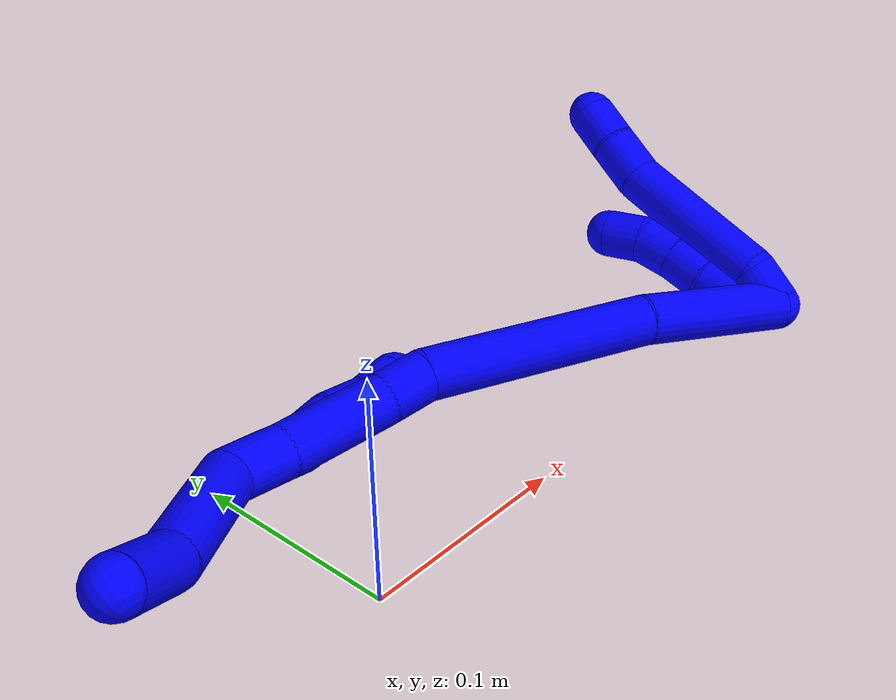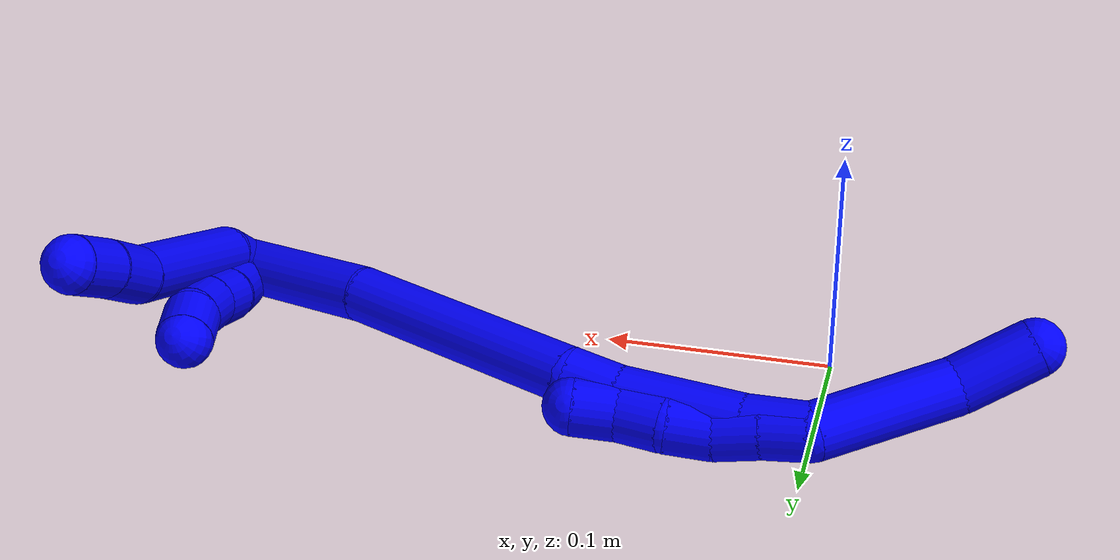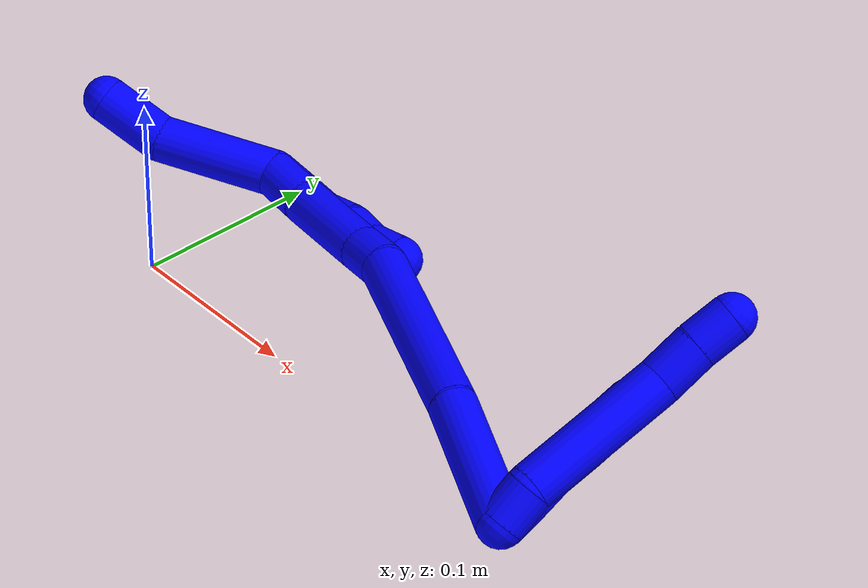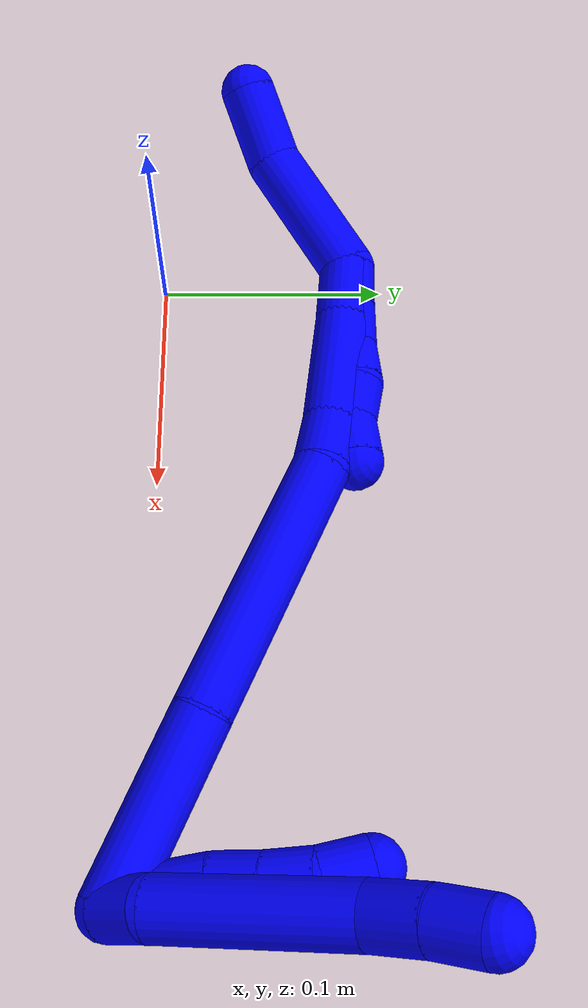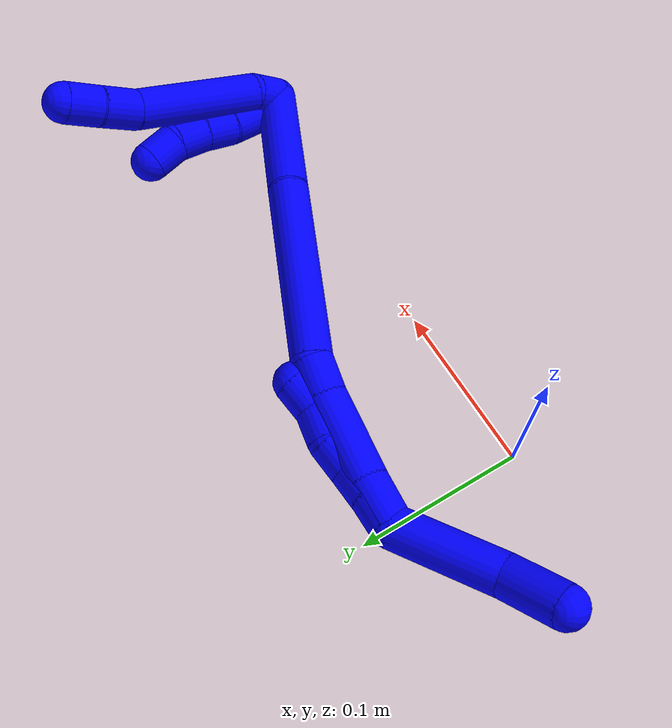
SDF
<sdf version="1.7">
 <world name="default">
  <model name="1">
   <static>0</static>
   <link name="1">
    <collision name="collision-cylinder-e_1_2_8">
     <pose>-2.2e-05 -0.000712 0.010663 0.066662 -0.002044 -6.8e-05</pose>
     <geometry><cylinder><radius>0.0125</radius><length>0.021373</length></cylinder></geometry>
     <surface>
      <friction><ode><mu>1.16</mu><mu2>1.16</mu2><slip1>0</slip1><slip2>0</slip2></ode></friction>
      <contact><ode><kp>1e+06</kp><kd>1</kd><max_vel>0</max_vel><min_depth>0.001</min_depth></ode></contact>
     </surface>
    </collision>
    <visual name="visual-cylinder-e_1_2_8">
     <pose>-2.2e-05 -0.000712 0.010663 0.066662 -0.002044 -6.8e-05</pose>
     <geometry><cylinder><radius>0.0125</radius><length>0.021373</length></cylinder></geometry>
     <material><ambient>0 0 1 1</ambient></material>
    </visual>
    <collision name="collision-cylinder-e_2_8_9">
     <pose>0.005551 0.008585 0.060712 -0.248848 0.13682 -0.017138</pose>
     <geometry><cylinder><radius>0.0125</radius><length>0.082044</length></cylinder></geometry>
     <surface>
      <friction><ode><mu>1.16</mu><mu2>1.16</mu2><slip1>0</slip1><slip2>0</slip2></ode></friction>
      <contact><ode><kp>1e+06</kp><kd>1</kd><max_vel>0</max_vel><min_depth>0.001</min_depth></ode></contact>
     </surface>
    </collision>
    <visual name="visual-cylinder-e_2_8_9">
     <pose>0.005551 0.008585 0.060712 -0.248848 0.13682 -0.017138</pose>
     <geometry><cylinder><radius>0.0125</radius><length>0.082044</length></cylinder></geometry>
     <material><ambient>0 0 1 1</ambient></material>
    </visual>
    <collision name="collision-cylinder-e_3_9_10">
     <pose>0.012414 0.01873 0.112392 -0.011045 0.102698 -0.000568</pose>
     <geometry><cylinder><radius>0.0125</radius><length>0.024717</length></cylinder></geometry>
     <surface>
      <friction><ode><mu>1.16</mu><mu2>1.16</mu2><slip1>0</slip1><slip2>0</slip2></ode></friction>
      <contact><ode><kp>1e+06</kp><kd>1</kd><max_vel>0</max_vel><min_depth>0.001</min_depth></ode></contact>
     </surface>
    </collision>
    <visual name="visual-cylinder-e_3_9_10">
     <pose>0.012414 0.01873 0.112392 -0.011045 0.102698 -0.000568</pose>
     <geometry><cylinder><radius>0.0125</radius><length>0.024717</length></cylinder></geometry>
     <material><ambient>0 0 1 1</ambient></material>
    </visual>
    <collision name="collision-cylinder-e_4_10_6">
     <pose>0.015833 0.019159 0.135399 -0.027346 0.198157 -0.002718</pose>
     <geometry><cylinder><radius>0.0125</radius><length>0.021866</length></cylinder></geometry>
     <surface>
      <friction><ode><mu>1.16</mu><mu2>1.16</mu2><slip1>0</slip1><slip2>0</slip2></ode></friction>
      <contact><ode><kp>1e+06</kp><kd>1</kd><max_vel>0</max_vel><min_depth>0.001</min_depth></ode></contact>
     </surface>
    </collision>
    <visual name="visual-cylinder-e_4_10_6">
     <pose>0.015833 0.019159 0.135399 -0.027346 0.198157 -0.002718</pose>
     <geometry><cylinder><radius>0.0125</radius><length>0.021866</length></cylinder></geometry>
     <material><ambient>0 0 1 1</ambient></material>
    </visual>
    <collision name="collision-cylinder-e_1_2_11">
     <pose>-0.000263 0.006347 0.007723 -0.687864 -0.026351 0.009439</pose>
     <geometry><cylinder><radius>0.0125</radius><length>0.02</length></cylinder></geometry>
     <surface>
      <friction><ode><mu>1.16</mu><mu2>1.16</mu2><slip1>0</slip1><slip2>0</slip2></ode></friction>
      <contact><ode><kp>1e+06</kp><kd>1</kd><max_vel>0</max_vel><min_depth>0.001</min_depth></ode></contact>
     </surface>
    </collision>
    <visual name="visual-cylinder-e_1_2_11">
     <pose>-0.000263 0.006347 0.007723 -0.687864 -0.026351 0.009439</pose>
     <geometry><cylinder><radius>0.0125</radius><length>0.02</length></cylinder></geometry>
     <material><ambient>0 0 1 1</ambient></material>
    </visual>
    <collision name="collision-cylinder-e_2_11_12">
     <pose>-0.000656 0.016773 0.024576 -0.420276 -0.012864 0.002744</pose>
     <geometry><cylinder><radius>0.0125</radius><length>0.02</length></cylinder></geometry>
     <surface>
      <friction><ode><mu>1.16</mu><mu2>1.16</mu2><slip1>0</slip1><slip2>0</slip2></ode></friction>
      <contact><ode><kp>1e+06</kp><kd>1</kd><max_vel>0</max_vel><min_depth>0.001</min_depth></ode></contact>
     </surface>
    </collision>
    <visual name="visual-cylinder-e_2_11_12">
     <pose>-0.000656 0.016773 0.024576 -0.420276 -0.012864 0.002744</pose>
     <geometry><cylinder><radius>0.0125</radius><length>0.02</length></cylinder></geometry>
     <material><ambient>0 0 1 1</ambient></material>
    </visual>
    <collision name="collision-cylinder-e_3_12_13">
     <pose>0.000445 0.0239 0.043149 -0.312112 0.123245 -0.019415</pose>
     <geometry><cylinder><radius>0.0125</radius><length>0.02</length></cylinder></geometry>
     <surface>
      <friction><ode><mu>1.16</mu><mu2>1.16</mu2><slip1>0</slip1><slip2>0</slip2></ode></friction>
      <contact><ode><kp>1e+06</kp><kd>1</kd><max_vel>0</max_vel><min_depth>0.001</min_depth></ode></contact>
     </surface>
    </collision>
    <visual name="visual-cylinder-e_3_12_13">
     <pose>0.000445 0.0239 0.043149 -0.312112 0.123245 -0.019415</pose>
     <geometry><cylinder><radius>0.0125</radius><length>0.02</length></cylinder></geometry>
     <material><ambient>0 0 1 1</ambient></material>
    </visual>
    <collision name="collision-cylinder-e_4_13_14">
     <pose>0.002455 0.030976 0.061714 -0.415908 0.078169 -0.016502</pose>
     <geometry><cylinder><radius>0.0125</radius><length>0.02</length></cylinder></geometry>
     <surface>
      <friction><ode><mu>1.16</mu><mu2>1.16</mu2><slip1>0</slip1><slip2>0</slip2></ode></friction>
      <contact><ode><kp>1e+06</kp><kd>1</kd><max_vel>0</max_vel><min_depth>0.001</min_depth></ode></contact>
     </surface>
    </collision>
    <visual name="visual-cylinder-e_4_13_14">
     <pose>0.002455 0.030976 0.061714 -0.415908 0.078169 -0.016502</pose>
     <geometry><cylinder><radius>0.0125</radius><length>0.02</length></cylinder></geometry>
     <material><ambient>0 0 1 1</ambient></material>
    </visual>
    <collision name="collision-cylinder-e_5_14_5">
     <pose>0.003254 0.041621 0.07833 -0.723205 0.001795 -0.000679</pose>
     <geometry><cylinder><radius>0.0125</radius><length>0.02</length></cylinder></geometry>
     <surface>
      <friction><ode><mu>1.16</mu><mu2>1.16</mu2><slip1>0</slip1><slip2>0</slip2></ode></friction>
      <contact><ode><kp>1e+06</kp><kd>1</kd><max_vel>0</max_vel><min_depth>0.001</min_depth></ode></contact>
     </surface>
    </collision>
    <visual name="visual-cylinder-e_5_14_5">
     <pose>0.003254 0.041621 0.07833 -0.723205 0.001795 -0.000679</pose>
     <geometry><cylinder><radius>0.0125</radius><length>0.02</length></cylinder></geometry>
     <material><ambient>0 0 1 1</ambient></material>
    </visual>
    <collision name="collision-cylinder-e_1_2_15">
     <pose>-0.030743 0.020169 0.014345 -0.952589 -0.892978 0.484273</pose>
     <geometry><cylinder><radius>0.0125</radius><length>0.078936</length></cylinder></geometry>
     <surface>
      <friction><ode><mu>1.16</mu><mu2>1.16</mu2><slip1>0</slip1><slip2>0</slip2></ode></friction>
      <contact><ode><kp>1e+06</kp><kd>1</kd><max_vel>0</max_vel><min_depth>0.001</min_depth></ode></contact>
     </surface>
    </collision>
    <visual name="visual-cylinder-e_1_2_15">
     <pose>-0.030743 0.020169 0.014345 -0.952589 -0.892978 0.484273</pose>
     <geometry><cylinder><radius>0.0125</radius><length>0.078936</length></cylinder></geometry>
     <material><ambient>0 0 1 1</ambient></material>
    </visual>
    <collision name="collision-cylinder-e_2_15_16">
     <pose>-0.104756 0.075348 0.044883 -1.13754 -0.84272 0.558065</pose>
     <geometry><cylinder><radius>0.0125</radius><length>0.115933</length></cylinder></geometry>
     <surface>
      <friction><ode><mu>1.16</mu><mu2>1.16</mu2><slip1>0</slip1><slip2>0</slip2></ode></friction>
      <contact><ode><kp>1e+06</kp><kd>1</kd><max_vel>0</max_vel><min_depth>0.001</min_depth></ode></contact>
     </surface>
    </collision>
    <visual name="visual-cylinder-e_2_15_16">
     <pose>-0.104756 0.075348 0.044883 -1.13754 -0.84272 0.558065</pose>
     <geometry><cylinder><radius>0.0125</radius><length>0.115933</length></cylinder></geometry>
     <material><ambient>0 0 1 1</ambient></material>
    </visual>
    <collision name="collision-cylinder-e_3_16_17">
     <pose>-0.157113 0.117488 0.061199 -1.55379 -0.90536 0.892055</pose>
     <geometry><cylinder><radius>0.0125</radius><length>0.023104</length></cylinder></geometry>
     <surface>
      <friction><ode><mu>1.16</mu><mu2>1.16</mu2><slip1>0</slip1><slip2>0</slip2></ode></friction>
      <contact><ode><kp>1e+06</kp><kd>1</kd><max_vel>0</max_vel><min_depth>0.001</min_depth></ode></contact>
     </surface>
    </collision>
    <visual name="visual-cylinder-e_3_16_17">
     <pose>-0.157113 0.117488 0.061199 -1.55379 -0.90536 0.892055</pose>
     <geometry><cylinder><radius>0.0125</radius><length>0.023104</length></cylinder></geometry>
     <material><ambient>0 0 1 1</ambient></material>
    </visual>
    <collision name="collision-cylinder-e_4_17_18">
     <pose>-0.189425 0.138305 0.061759 -1.53872 -1.03806 1.01065</pose>
     <geometry><cylinder><radius>0.0125</radius><length>0.053922</length></cylinder></geometry>
     <surface>
      <friction><ode><mu>1.16</mu><mu2>1.16</mu2><slip1>0</slip1><slip2>0</slip2></ode></friction>
      <contact><ode><kp>1e+06</kp><kd>1</kd><max_vel>0</max_vel><min_depth>0.001</min_depth></ode></contact>
     </surface>
    </collision>
    <visual name="visual-cylinder-e_4_17_18">
     <pose>-0.189425 0.138305 0.061759 -1.53872 -1.03806 1.01065</pose>
     <geometry><cylinder><radius>0.0125</radius><length>0.053922</length></cylinder></geometry>
     <material><ambient>0 0 1 1</ambient></material>
    </visual>
    <collision name="collision-cylinder-e_5_18_1">
     <pose>-0.225377 0.157911 0.062865 -1.45856 -1.13305 1.03373</pose>
     <geometry><cylinder><radius>0.0125</radius><length>0.028105</length></cylinder></geometry>
     <surface>
      <friction><ode><mu>1.16</mu><mu2>1.16</mu2><slip1>0</slip1><slip2>0</slip2></ode></friction>
      <contact><ode><kp>1e+06</kp><kd>1</kd><max_vel>0</max_vel><min_depth>0.001</min_depth></ode></contact>
     </surface>
    </collision>
    <visual name="visual-cylinder-e_5_18_1">
     <pose>-0.225377 0.157911 0.062865 -1.45856 -1.13305 1.03373</pose>
     <geometry><cylinder><radius>0.0125</radius><length>0.028105</length></cylinder></geometry>
     <material><ambient>0 0 1 1</ambient></material>
    </visual>
    <collision name="collision-cylinder-e_1_1_19">
     <pose>-0.228746 0.160312 0.063352 1.622 1.21079 1.25915</pose>
     <geometry><cylinder><radius>0.0125</radius><length>0.02</length></cylinder></geometry>
     <surface>
      <friction><ode><mu>1.16</mu><mu2>1.16</mu2><slip1>0</slip1><slip2>0</slip2></ode></friction>
      <contact><ode><kp>1e+06</kp><kd>1</kd><max_vel>0</max_vel><min_depth>0.001</min_depth></ode></contact>
     </surface>
    </collision>
    <visual name="visual-cylinder-e_1_1_19">
     <pose>-0.228746 0.160312 0.063352 1.622 1.21079 1.25915</pose>
     <geometry><cylinder><radius>0.0125</radius><length>0.02</length></cylinder></geometry>
     <material><ambient>0 0 1 1</ambient></material>
    </visual>
    <collision name="collision-cylinder-e_2_19_20">
     <pose>-0.209752 0.154128 0.062928 1.66195 1.29978 1.3887</pose>
     <geometry><cylinder><radius>0.0125</radius><length>0.02</length></cylinder></geometry>
     <surface>
      <friction><ode><mu>1.16</mu><mu2>1.16</mu2><slip1>0</slip1><slip2>0</slip2></ode></friction>
      <contact><ode><kp>1e+06</kp><kd>1</kd><max_vel>0</max_vel><min_depth>0.001</min_depth></ode></contact>
     </surface>
    </collision>
    <visual name="visual-cylinder-e_2_19_20">
     <pose>-0.209752 0.154128 0.062928 1.66195 1.29978 1.3887</pose>
     <geometry><cylinder><radius>0.0125</radius><length>0.02</length></cylinder></geometry>
     <material><ambient>0 0 1 1</ambient></material>
    </visual>
    <collision name="collision-cylinder-e_3_20_21">
     <pose>-0.191299 0.1472 0.064703 1.12843 1.07969 0.724914</pose>
     <geometry><cylinder><radius>0.0125</radius><length>0.02</length></cylinder></geometry>
     <surface>
      <friction><ode><mu>1.16</mu><mu2>1.16</mu2><slip1>0</slip1><slip2>0</slip2></ode></friction>
      <contact><ode><kp>1e+06</kp><kd>1</kd><max_vel>0</max_vel><min_depth>0.001</min_depth></ode></contact>
     </surface>
    </collision>
    <visual name="visual-cylinder-e_3_20_21">
     <pose>-0.191299 0.1472 0.064703 1.12843 1.07969 0.724914</pose>
     <geometry><cylinder><radius>0.0125</radius><length>0.02</length></cylinder></geometry>
     <material><ambient>0 0 1 1</ambient></material>
    </visual>
    <collision name="collision-cylinder-e_4_21_22">
     <pose>-0.173984 0.137728 0.065903 1.72669 1.01527 1.15347</pose>
     <geometry><cylinder><radius>0.0125</radius><length>0.02</length></cylinder></geometry>
     <surface>
      <friction><ode><mu>1.16</mu><mu2>1.16</mu2><slip1>0</slip1><slip2>0</slip2></ode></friction>
      <contact><ode><kp>1e+06</kp><kd>1</kd><max_vel>0</max_vel><min_depth>0.001</min_depth></ode></contact>
     </surface>
    </collision>
    <visual name="visual-cylinder-e_4_21_22">
     <pose>-0.173984 0.137728 0.065903 1.72669 1.01527 1.15347</pose>
     <geometry><cylinder><radius>0.0125</radius><length>0.02</length></cylinder></geometry>
     <material><ambient>0 0 1 1</ambient></material>
    </visual>
    <collision name="collision-cylinder-e_5_22_4">
     <pose>-0.156538 0.128547 0.067117 1.09772 1.10839 0.72363</pose>
     <geometry><cylinder><radius>0.0125</radius><length>0.02</length></cylinder></geometry>
     <surface>
      <friction><ode><mu>1.16</mu><mu2>1.16</mu2><slip1>0</slip1><slip2>0</slip2></ode></friction>
      <contact><ode><kp>1e+06</kp><kd>1</kd><max_vel>0</max_vel><min_depth>0.001</min_depth></ode></contact>
     </surface>
    </collision>
    <visual name="visual-cylinder-e_5_22_4">
     <pose>-0.156538 0.128547 0.067117 1.09772 1.10839 0.72363</pose>
     <geometry><cylinder><radius>0.0125</radius><length>0.02</length></cylinder></geometry>
     <material><ambient>0 0 1 1</ambient></material>
    </visual>
    <collision name="collision-cylinder-e_1_1_23">
     <pose>-0.267674 0.16221 0.051104 3.01201 -1.16987 -2.94627</pose>
     <geometry><cylinder><radius>0.0125</radius><length>0.064232</length></cylinder></geometry>
     <surface>
      <friction><ode><mu>1.16</mu><mu2>1.16</mu2><slip1>0</slip1><slip2>0</slip2></ode></friction>
      <contact><ode><kp>1e+06</kp><kd>1</kd><max_vel>0</max_vel><min_depth>0.001</min_depth></ode></contact>
     </surface>
    </collision>
    <visual name="visual-cylinder-e_1_1_23">
     <pose>-0.267674 0.16221 0.051104 3.01201 -1.16987 -2.94627</pose>
     <geometry><cylinder><radius>0.0125</radius><length>0.064232</length></cylinder></geometry>
     <material><ambient>0 0 1 1</ambient></material>
    </visual>
    <collision name="collision-cylinder-e_2_23_3">
     <pose>-0.31487 0.157868 0.037365 2.01917 -1.40104 -1.8603</pose>
     <geometry><cylinder><radius>0.0125</radius><length>0.035768</length></cylinder></geometry>
     <surface>
      <friction><ode><mu>1.16</mu><mu2>1.16</mu2><slip1>0</slip1><slip2>0</slip2></ode></friction>
      <contact><ode><kp>1e+06</kp><kd>1</kd><max_vel>0</max_vel><min_depth>0.001</min_depth></ode></contact>
     </surface>
    </collision>
    <visual name="visual-cylinder-e_2_23_3">
     <pose>-0.31487 0.157868 0.037365 2.01917 -1.40104 -1.8603</pose>
     <geometry><cylinder><radius>0.0125</radius><length>0.035768</length></cylinder></geometry>
     <material><ambient>0 0 1 1</ambient></material>
    </visual>
    <collision name="collision-sphere-3">
     <pose>-0.332497 0.155146 0.036056 0 -0 0</pose>
     <geometry><sphere><radius>0.0125</radius></sphere></geometry>
     <surface>
      <friction><ode><mu>1.16</mu><mu2>1.16</mu2><slip1>0</slip1><slip2>0</slip2></ode></friction>
      <contact><ode><kp>1e+06</kp><kd>1</kd><max_vel>0</max_vel><min_depth>0.001</min_depth></ode></contact>
     </surface>
    </collision>
    <visual name="visual-sphere-3">
     <pose>-0.332497 0.155146 0.036056 0 -0 0</pose>
     <geometry><sphere><radius>0.0125</radius></sphere></geometry>
     <material><ambient>0 0 1 1</ambient></material>
    </visual>
    <collision name="collision-sphere-23">
     <pose>-0.297243 0.160591 0.038675 0 -0 0</pose>
     <geometry><sphere><radius>0.0125</radius></sphere></geometry>
     <surface>
      <friction><ode><mu>1.16</mu><mu2>1.16</mu2><slip1>0</slip1><slip2>0</slip2></ode></friction>
      <contact><ode><kp>1e+06</kp><kd>1</kd><max_vel>0</max_vel><min_depth>0.001</min_depth></ode></contact>
     </surface>
    </collision>
    <visual name="visual-sphere-23">
     <pose>-0.297243 0.160591 0.038675 0 -0 0</pose>
     <geometry><sphere><radius>0.0125</radius></sphere></geometry>
     <material><ambient>0 0 1 1</ambient></material>
    </visual>
    <collision name="collision-sphere-4">
     <pose>-0.147588 0.124576 0.06915 0 -0 0</pose>
     <geometry><sphere><radius>0.0125</radius></sphere></geometry>
     <surface>
      <friction><ode><mu>1.16</mu><mu2>1.16</mu2><slip1>0</slip1><slip2>0</slip2></ode></friction>
      <contact><ode><kp>1e+06</kp><kd>1</kd><max_vel>0</max_vel><min_depth>0.001</min_depth></ode></contact>
     </surface>
    </collision>
    <visual name="visual-sphere-4">
     <pose>-0.147588 0.124576 0.06915 0 -0 0</pose>
     <geometry><sphere><radius>0.0125</radius></sphere></geometry>
     <material><ambient>0 0 1 1</ambient></material>
    </visual>
    <collision name="collision-sphere-22">
     <pose>-0.165488 0.132518 0.065085 0 -0 0</pose>
     <geometry><sphere><radius>0.0125</radius></sphere></geometry>
     <surface>
      <friction><ode><mu>1.16</mu><mu2>1.16</mu2><slip1>0</slip1><slip2>0</slip2></ode></friction>
      <contact><ode><kp>1e+06</kp><kd>1</kd><max_vel>0</max_vel><min_depth>0.001</min_depth></ode></contact>
     </surface>
    </collision>
    <visual name="visual-sphere-22">
     <pose>-0.165488 0.132518 0.065085 0 -0 0</pose>
     <geometry><sphere><radius>0.0125</radius></sphere></geometry>
     <material><ambient>0 0 1 1</ambient></material>
    </visual>
    <collision name="collision-sphere-21">
     <pose>-0.182481 0.142938 0.066722 0 -0 0</pose>
     <geometry><sphere><radius>0.0125</radius></sphere></geometry>
     <surface>
      <friction><ode><mu>1.16</mu><mu2>1.16</mu2><slip1>0</slip1><slip2>0</slip2></ode></friction>
      <contact><ode><kp>1e+06</kp><kd>1</kd><max_vel>0</max_vel><min_depth>0.001</min_depth></ode></contact>
     </surface>
    </collision>
    <visual name="visual-sphere-21">
     <pose>-0.182481 0.142938 0.066722 0 -0 0</pose>
     <geometry><sphere><radius>0.0125</radius></sphere></geometry>
     <material><ambient>0 0 1 1</ambient></material>
    </visual>
    <collision name="collision-sphere-20">
     <pose>-0.200117 0.151462 0.062685 0 -0 0</pose>
     <geometry><sphere><radius>0.0125</radius></sphere></geometry>
     <surface>
      <friction><ode><mu>1.16</mu><mu2>1.16</mu2><slip1>0</slip1><slip2>0</slip2></ode></friction>
      <contact><ode><kp>1e+06</kp><kd>1</kd><max_vel>0</max_vel><min_depth>0.001</min_depth></ode></contact>
     </surface>
    </collision>
    <visual name="visual-sphere-20">
     <pose>-0.200117 0.151462 0.062685 0 -0 0</pose>
     <geometry><sphere><radius>0.0125</radius></sphere></geometry>
     <material><ambient>0 0 1 1</ambient></material>
    </visual>
    <collision name="collision-sphere-11">
     <pose>-0.000527 0.012693 0.015447 0 -0 0</pose>
     <geometry><sphere><radius>0.0125</radius></sphere></geometry>
     <surface>
      <friction><ode><mu>1.16</mu><mu2>1.16</mu2><slip1>0</slip1><slip2>0</slip2></ode></friction>
      <contact><ode><kp>1e+06</kp><kd>1</kd><max_vel>0</max_vel><min_depth>0.001</min_depth></ode></contact>
     </surface>
    </collision>
    <visual name="visual-sphere-11">
     <pose>-0.000527 0.012693 0.015447 0 -0 0</pose>
     <geometry><sphere><radius>0.0125</radius></sphere></geometry>
     <material><ambient>0 0 1 1</ambient></material>
    </visual>
    <collision name="collision-sphere-6">
     <pose>0.017985 0.019452 0.146115 0 -0 0</pose>
     <geometry><sphere><radius>0.0125</radius></sphere></geometry>
     <surface>
      <friction><ode><mu>1.16</mu><mu2>1.16</mu2><slip1>0</slip1><slip2>0</slip2></ode></friction>
      <contact><ode><kp>1e+06</kp><kd>1</kd><max_vel>0</max_vel><min_depth>0.001</min_depth></ode></contact>
     </surface>
    </collision>
    <visual name="visual-sphere-6">
     <pose>0.017985 0.019452 0.146115 0 -0 0</pose>
     <geometry><sphere><radius>0.0125</radius></sphere></geometry>
     <material><ambient>0 0 1 1</ambient></material>
    </visual>
    <collision name="collision-sphere-10">
     <pose>0.013681 0.018865 0.124684 0 -0 0</pose>
     <geometry><sphere><radius>0.0125</radius></sphere></geometry>
     <surface>
      <friction><ode><mu>1.16</mu><mu2>1.16</mu2><slip1>0</slip1><slip2>0</slip2></ode></friction>
      <contact><ode><kp>1e+06</kp><kd>1</kd><max_vel>0</max_vel><min_depth>0.001</min_depth></ode></contact>
     </surface>
    </collision>
    <visual name="visual-sphere-10">
     <pose>0.013681 0.018865 0.124684 0 -0 0</pose>
     <geometry><sphere><radius>0.0125</radius></sphere></geometry>
     <material><ambient>0 0 1 1</ambient></material>
    </visual>
    <collision name="collision-sphere-9">
     <pose>0.011147 0.018594 0.100099 0 -0 0</pose>
     <geometry><sphere><radius>0.0125</radius></sphere></geometry>
     <surface>
      <friction><ode><mu>1.16</mu><mu2>1.16</mu2><slip1>0</slip1><slip2>0</slip2></ode></friction>
      <contact><ode><kp>1e+06</kp><kd>1</kd><max_vel>0</max_vel><min_depth>0.001</min_depth></ode></contact>
     </surface>
    </collision>
    <visual name="visual-sphere-9">
     <pose>0.011147 0.018594 0.100099 0 -0 0</pose>
     <geometry><sphere><radius>0.0125</radius></sphere></geometry>
     <material><ambient>0 0 1 1</ambient></material>
    </visual>
    <collision name="collision-sphere-2">
     <geometry><sphere><radius>0.0125</radius></sphere></geometry>
     <surface>
      <friction><ode><mu>1.16</mu><mu2>1.16</mu2><slip1>0</slip1><slip2>0</slip2></ode></friction>
      <contact><ode><kp>1e+06</kp><kd>1</kd><max_vel>0</max_vel><min_depth>0.001</min_depth></ode></contact>
     </surface>
    </collision>
    <visual name="visual-sphere-2">
     <geometry><sphere><radius>0.0125</radius></sphere></geometry>
     <material><ambient>0 0 1 1</ambient></material>
    </visual>
    <collision name="collision-sphere-19">
     <pose>-0.219387 0.156794 0.063172 0 -0 0</pose>
     <geometry><sphere><radius>0.0125</radius></sphere></geometry>
     <surface>
      <friction><ode><mu>1.16</mu><mu2>1.16</mu2><slip1>0</slip1><slip2>0</slip2></ode></friction>
      <contact><ode><kp>1e+06</kp><kd>1</kd><max_vel>0</max_vel><min_depth>0.001</min_depth></ode></contact>
     </surface>
    </collision>
    <visual name="visual-sphere-19">
     <pose>-0.219387 0.156794 0.063172 0 -0 0</pose>
     <geometry><sphere><radius>0.0125</radius></sphere></geometry>
     <material><ambient>0 0 1 1</ambient></material>
    </visual>
    <collision name="collision-sphere-8">
     <pose>-4.4e-05 -0.001424 0.021325 0 -0 0</pose>
     <geometry><sphere><radius>0.0125</radius></sphere></geometry>
     <surface>
      <friction><ode><mu>1.16</mu><mu2>1.16</mu2><slip1>0</slip1><slip2>0</slip2></ode></friction>
      <contact><ode><kp>1e+06</kp><kd>1</kd><max_vel>0</max_vel><min_depth>0.001</min_depth></ode></contact>
     </surface>
    </collision>
    <visual name="visual-sphere-8">
     <pose>-4.4e-05 -0.001424 0.021325 0 -0 0</pose>
     <geometry><sphere><radius>0.0125</radius></sphere></geometry>
     <material><ambient>0 0 1 1</ambient></material>
    </visual>
    <collision name="collision-sphere-12">
     <pose>-0.000784 0.020853 0.033705 0 -0 0</pose>
     <geometry><sphere><radius>0.0125</radius></sphere></geometry>
     <surface>
      <friction><ode><mu>1.16</mu><mu2>1.16</mu2><slip1>0</slip1><slip2>0</slip2></ode></friction>
      <contact><ode><kp>1e+06</kp><kd>1</kd><max_vel>0</max_vel><min_depth>0.001</min_depth></ode></contact>
     </surface>
    </collision>
    <visual name="visual-sphere-12">
     <pose>-0.000784 0.020853 0.033705 0 -0 0</pose>
     <geometry><sphere><radius>0.0125</radius></sphere></geometry>
     <material><ambient>0 0 1 1</ambient></material>
    </visual>
    <collision name="collision-sphere-13">
     <pose>0.001674 0.026948 0.052594 0 -0 0</pose>
     <geometry><sphere><radius>0.0125</radius></sphere></geometry>
     <surface>
      <friction><ode><mu>1.16</mu><mu2>1.16</mu2><slip1>0</slip1><slip2>0</slip2></ode></friction>
      <contact><ode><kp>1e+06</kp><kd>1</kd><max_vel>0</max_vel><min_depth>0.001</min_depth></ode></contact>
     </surface>
    </collision>
    <visual name="visual-sphere-13">
     <pose>0.001674 0.026948 0.052594 0 -0 0</pose>
     <geometry><sphere><radius>0.0125</radius></sphere></geometry>
     <material><ambient>0 0 1 1</ambient></material>
    </visual>
    <collision name="collision-sphere-14">
     <pose>0.003236 0.035003 0.070833 0 -0 0</pose>
     <geometry><sphere><radius>0.0125</radius></sphere></geometry>
     <surface>
      <friction><ode><mu>1.16</mu><mu2>1.16</mu2><slip1>0</slip1><slip2>0</slip2></ode></friction>
      <contact><ode><kp>1e+06</kp><kd>1</kd><max_vel>0</max_vel><min_depth>0.001</min_depth></ode></contact>
     </surface>
    </collision>
    <visual name="visual-sphere-14">
     <pose>0.003236 0.035003 0.070833 0 -0 0</pose>
     <geometry><sphere><radius>0.0125</radius></sphere></geometry>
     <material><ambient>0 0 1 1</ambient></material>
    </visual>
    <collision name="collision-sphere-5">
     <pose>0.003272 0.048239 0.085827 0 -0 0</pose>
     <geometry><sphere><radius>0.0125</radius></sphere></geometry>
     <surface>
      <friction><ode><mu>1.16</mu><mu2>1.16</mu2><slip1>0</slip1><slip2>0</slip2></ode></friction>
      <contact><ode><kp>1e+06</kp><kd>1</kd><max_vel>0</max_vel><min_depth>0.001</min_depth></ode></contact>
     </surface>
    </collision>
    <visual name="visual-sphere-5">
     <pose>0.003272 0.048239 0.085827 0 -0 0</pose>
     <geometry><sphere><radius>0.0125</radius></sphere></geometry>
     <material><ambient>0 0 1 1</ambient></material>
    </visual>
    <collision name="collision-sphere-15">
     <pose>-0.061487 0.040339 0.028689 0 -0 0</pose>
     <geometry><sphere><radius>0.0125</radius></sphere></geometry>
     <surface>
      <friction><ode><mu>1.16</mu><mu2>1.16</mu2><slip1>0</slip1><slip2>0</slip2></ode></friction>
      <contact><ode><kp>1e+06</kp><kd>1</kd><max_vel>0</max_vel><min_depth>0.001</min_depth></ode></contact>
     </surface>
    </collision>
    <visual name="visual-sphere-15">
     <pose>-0.061487 0.040339 0.028689 0 -0 0</pose>
     <geometry><sphere><radius>0.0125</radius></sphere></geometry>
     <material><ambient>0 0 1 1</ambient></material>
    </visual>
    <collision name="collision-sphere-16">
     <pose>-0.148025 0.110356 0.061077 0 -0 0</pose>
     <geometry><sphere><radius>0.0125</radius></sphere></geometry>
     <surface>
      <friction><ode><mu>1.16</mu><mu2>1.16</mu2><slip1>0</slip1><slip2>0</slip2></ode></friction>
      <contact><ode><kp>1e+06</kp><kd>1</kd><max_vel>0</max_vel><min_depth>0.001</min_depth></ode></contact>
     </surface>
    </collision>
    <visual name="visual-sphere-16">
     <pose>-0.148025 0.110356 0.061077 0 -0 0</pose>
     <geometry><sphere><radius>0.0125</radius></sphere></geometry>
     <material><ambient>0 0 1 1</ambient></material>
    </visual>
    <collision name="collision-sphere-17">
     <pose>-0.1662 0.124619 0.06132 0 -0 0</pose>
     <geometry><sphere><radius>0.0125</radius></sphere></geometry>
     <surface>
      <friction><ode><mu>1.16</mu><mu2>1.16</mu2><slip1>0</slip1><slip2>0</slip2></ode></friction>
      <contact><ode><kp>1e+06</kp><kd>1</kd><max_vel>0</max_vel><min_depth>0.001</min_depth></ode></contact>
     </surface>
    </collision>
    <visual name="visual-sphere-17">
     <pose>-0.1662 0.124619 0.06132 0 -0 0</pose>
     <geometry><sphere><radius>0.0125</radius></sphere></geometry>
     <material><ambient>0 0 1 1</ambient></material>
    </visual>
    <collision name="collision-sphere-18">
     <pose>-0.21265 0.151991 0.062198 0 -0 0</pose>
     <geometry><sphere><radius>0.0125</radius></sphere></geometry>
     <surface>
      <friction><ode><mu>1.16</mu><mu2>1.16</mu2><slip1>0</slip1><slip2>0</slip2></ode></friction>
      <contact><ode><kp>1e+06</kp><kd>1</kd><max_vel>0</max_vel><min_depth>0.001</min_depth></ode></contact>
     </surface>
    </collision>
    <visual name="visual-sphere-18">
     <pose>-0.21265 0.151991 0.062198 0 -0 0</pose>
     <geometry><sphere><radius>0.0125</radius></sphere></geometry>
     <material><ambient>0 0 1 1</ambient></material>
    </visual>
    <collision name="collision-sphere-1">
     <pose>-0.238105 0.16383 0.063533 0 -0 0</pose>
     <geometry><sphere><radius>0.0125</radius></sphere></geometry>
     <surface>
      <friction><ode><mu>1.16</mu><mu2>1.16</mu2><slip1>0</slip1><slip2>0</slip2></ode></friction>
      <contact><ode><kp>1e+06</kp><kd>1</kd><max_vel>0</max_vel><min_depth>0.001</min_depth></ode></contact>
     </surface>
    </collision>
    <visual name="visual-sphere-1">
     <pose>-0.238105 0.16383 0.063533 0 -0 0</pose>
     <geometry><sphere><radius>0.0125</radius></sphere></geometry>
     <material><ambient>0 0 1 1</ambient></material>
    </visual>
    <inertial>
     <pose>-0.108265 0.079367 0.052271 0 -0 0</pose>
     <mass>0.75</mass>
     <inertia><ixx>0.00021</ixx><ixy>0</ixy><ixz>0</ixz><iyy>0.000324</iyy><iyz>0</iyz><izz>6.3e-05</izz></inertia>
    </inertial>
   </link>
   <pose>0.278383 -0.008836 0.011417 -0.890684 0.378031 0.219576</pose>
  </model>
 </world>
</sdf>
